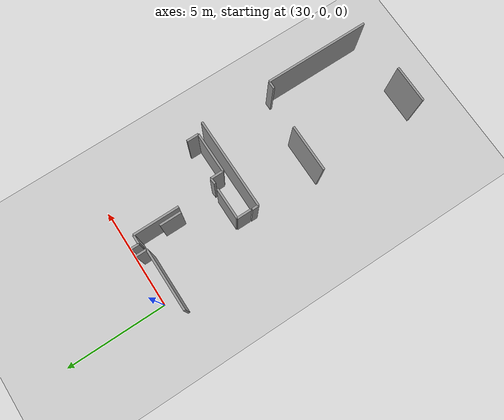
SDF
<sdf version="1.6">
 <world name="default">
  <model name="ground_plane">
   <static>1</static>
   <link name="link">
    <collision name="collision">
     <geometry><plane><normal>0 0 1</normal><size>100 100</size></plane></geometry>
     <surface><friction><ode><mu>100</mu><mu2>50</mu2></ode></friction></surface>
    </collision>
    <visual name="visual">
     <cast_shadows>0</cast_shadows>
     <geometry><plane><normal>0 0 1</normal><size>100 100</size></plane></geometry>
     <material>
      <script><uri>file://media/materials/scripts/gazebo.material</uri><name>Gazebo/Grey</name></script>
     </material>
    </visual>
   </link>
  </model>
  <model name="0510032262_A_40_1_104">
   <static>1</static>
   <link name="Wall_146">
    <collision name="Wall_146_Collision">
     <geometry><box><size>1.05213059619 0.1 2.5</size></box></geometry>
     <pose>0.526065298093 0 1.25 0 0 0</pose>
    </collision>
    <visual name="Wall_146_Visual">
     <pose>0.526065298093 0 1.25 0 0 0</pose>
     <geometry><box><size>1.05213059619 0.1 2.5</size></box></geometry>
     <material>
      <script><uri>file://media/materials/scripts/gazebo.material</uri><name>Gazebo/Grey</name></script>
      <ambient>1 1 1 1</ambient>
     </material>
    </visual>
    <pose>80.2247675857 -16.1580099629 0 0 0 -1.57079632679</pose>
   </link>
   <link name="Wall_147">
    <collision name="Wall_147_Collision">
     <geometry><box><size>1.52933337564 0.1 2.5</size></box></geometry>
     <pose>0.764666687819 0 1.25 0 0 0</pose>
    </collision>
    <visual name="Wall_147_Visual">
     <pose>0.764666687819 0 1.25 0 0 0</pose>
     <geometry><box><size>1.52933337564 0.1 2.5</size></box></geometry>
     <material>
      <script><uri>file://media/materials/scripts/gazebo.material</uri><name>Gazebo/Grey</name></script>
      <ambient>1 1 1 1</ambient>
     </material>
    </visual>
    <pose>80.2247675857 -19.0532093791 0 0 0 3.14159265359</pose>
   </link>
   <link name="Wall_148">
    <collision name="Wall_148_Collision">
     <geometry><box><size>0.690928705143 0.1 2.5</size></box></geometry>
     <pose>0.345464352572 0 1.25 0 0 0</pose>
    </collision>
    <visual name="Wall_148_Visual">
     <pose>0.345464352572 0 1.25 0 0 0</pose>
     <geometry><box><size>0.690928705143 0.1 2.5</size></box></geometry>
     <material>
      <script><uri>file://media/materials/scripts/gazebo.material</uri><name>Gazebo/Grey</name></script>
      <ambient>1 1 1 1</ambient>
     </material>
    </visual>
    <pose>78.6954342101 -19.0532093791 0 0 0 -1.57079632679</pose>
   </link>
   <link name="Wall_233">
    <collision name="Wall_233_Collision">
     <geometry><box><size>2.32204841831 0.1 2.5</size></box></geometry>
     <pose>1.16102420916 0 1.25 0 0 0</pose>
    </collision>
    <visual name="Wall_233_Visual">
     <pose>1.16102420916 0 1.25 0 0 0</pose>
     <geometry><box><size>2.32204841831 0.1 2.5</size></box></geometry>
     <material>
      <script><uri>file://media/materials/scripts/gazebo.material</uri><name>Gazebo/Grey</name></script>
      <ambient>1 1 1 1</ambient>
     </material>
    </visual>
    <pose>80.7689818193 -23.3528571882 0 0 0 3.14159265359</pose>
   </link>
   <link name="Wall_237">
    <collision name="Wall_237_Collision">
     <geometry><box><size>0.312466288035 0.1 2.5</size></box></geometry>
     <pose>0.156233144018 0 1.25 0 0 0</pose>
    </collision>
    <visual name="Wall_237_Visual">
     <pose>0.156233144018 0 1.25 0 0 0</pose>
     <geometry><box><size>0.312466288035 0.1 2.5</size></box></geometry>
     <material>
      <script><uri>file://media/materials/scripts/gazebo.material</uri><name>Gazebo/Grey</name></script>
      <ambient>1 1 1 1</ambient>
     </material>
    </visual>
    <pose>78.6738585525 -19.798838722 0 0 0 -1.57079632679</pose>
   </link>
   <link name="Wall_238">
    <collision name="Wall_238_Collision">
     <geometry><box><size>4.46654186629 0.1 2.5</size></box></geometry>
     <pose>2.23327093315 0 1.25 0 0 0</pose>
    </collision>
    <visual name="Wall_238_Visual">
     <pose>2.23327093315 0 1.25 0 0 0</pose>
     <geometry><box><size>4.46654186629 0.1 2.5</size></box></geometry>
     <material>
      <script><uri>file://media/materials/scripts/gazebo.material</uri><name>Gazebo/Grey</name></script>
      <ambient>1 1 1 1</ambient>
     </material>
    </visual>
    <pose>78.6738585525 -20.11130501 0 0 0 0.0</pose>
   </link>
   <link name="Wall_242">
    <collision name="Wall_242_Collision">
     <geometry><box><size>1.86096392423 0.1 2.5</size></box></geometry>
     <pose>0.930481962116 0 1.25 0 0 0</pose>
    </collision>
    <visual name="Wall_242_Visual">
     <pose>0.930481962116 0 1.25 0 0 0</pose>
     <geometry><box><size>1.86096392423 0.1 2.5</size></box></geometry>
     <material>
      <script><uri>file://media/materials/scripts/gazebo.material</uri><name>Gazebo/Grey</name></script>
      <ambient>1 1 1 1</ambient>
     </material>
    </visual>
    <pose>80.5117238316 -28.8604879906 0 0 0 3.14159265359</pose>
   </link>
   <link name="Wall_247">
    <collision name="Wall_247_Collision">
     <geometry><box><size>0.383792873687 0.1 2.5</size></box></geometry>
     <pose>0.191896436844 0 1.25 0 0 0</pose>
    </collision>
    <visual name="Wall_247_Visual">
     <pose>0.191896436844 0 1.25 0 0 0</pose>
     <geometry><box><size>0.383792873687 0.1 2.5</size></box></geometry>
     <material>
      <script><uri>file://media/materials/scripts/gazebo.material</uri><name>Gazebo/Grey</name></script>
      <ambient>1 1 1 1</ambient>
     </material>
    </visual>
    <pose>82.7398546816 -23.6466668782 0 0 0 0.0</pose>
   </link>
   <link name="Wall_248">
    <collision name="Wall_248_Collision">
     <geometry><box><size>5.21382846673 0.1 2.5</size></box></geometry>
     <pose>2.60691423336 0 1.25 0 0 0</pose>
    </collision>
    <visual name="Wall_248_Visual">
     <pose>2.60691423336 0 1.25 0 0 0</pose>
     <geometry><box><size>5.21382846673 0.1 2.5</size></box></geometry>
     <material>
      <script><uri>file://media/materials/scripts/gazebo.material</uri><name>Gazebo/Grey</name></script>
      <ambient>1 1 1 1</ambient>
     </material>
    </visual>
    <pose>83.1236475553 -23.6466668782 0 0 0 -1.5691167198</pose>
   </link>
   <link name="Wall_249">
    <collision name="Wall_249_Collision">
     <geometry><box><size>2.22927309071 0.1 2.5</size></box></geometry>
     <pose>1.11463654536 0 1.25 0 0 0</pose>
    </collision>
    <visual name="Wall_249_Visual">
     <pose>1.11463654536 0 1.25 0 0 0</pose>
     <geometry><box><size>2.22927309071 0.1 2.5</size></box></geometry>
     <material>
      <script><uri>file://media/materials/scripts/gazebo.material</uri><name>Gazebo/Grey</name></script>
      <ambient>1 1 1 1</ambient>
     </material>
    </visual>
    <pose>80.4778373576 -17.2503728147 0 0 0 1.57079632679</pose>
   </link>
   <link name="Wall_250">
    <collision name="Wall_250_Collision">
     <geometry><box><size>0.449027508963 0.1 2.5</size></box></geometry>
     <pose>0.224513754482 0 1.25 0 0 0</pose>
    </collision>
    <visual name="Wall_250_Visual">
     <pose>0.224513754482 0 1.25 0 0 0</pose>
     <geometry><box><size>0.449027508963 0.1 2.5</size></box></geometry>
     <material>
      <script><uri>file://media/materials/scripts/gazebo.material</uri><name>Gazebo/Grey</name></script>
      <ambient>1 1 1 1</ambient>
     </material>
    </visual>
    <pose>80.4778373576 -15.021099724 0 0 0 3.14159265359</pose>
   </link>
   <link name="Wall_251">
    <collision name="Wall_251_Collision">
     <geometry><box><size>0.386965764508 0.1 2.5</size></box></geometry>
     <pose>0.193482882254 0 1.25 0 0 0</pose>
    </collision>
    <visual name="Wall_251_Visual">
     <pose>0.193482882254 0 1.25 0 0 0</pose>
     <geometry><box><size>0.386965764508 0.1 2.5</size></box></geometry>
     <material>
      <script><uri>file://media/materials/scripts/gazebo.material</uri><name>Gazebo/Grey</name></script>
      <ambient>1 1 1 1</ambient>
     </material>
    </visual>
    <pose>80.0288098487 -15.021099724 0 0 0 1.57079632679</pose>
   </link>
   <link name="Wall_268">
    <collision name="Wall_268_Collision">
     <geometry><box><size>0.584192657931 0.1 2.5</size></box></geometry>
     <pose>0.292096328965 0 1.25 0 0 0</pose>
    </collision>
    <visual name="Wall_268_Visual">
     <pose>0.292096328965 0 1.25 0 0 0</pose>
     <geometry><box><size>0.584192657931 0.1 2.5</size></box></geometry>
     <material>
      <script><uri>file://media/materials/scripts/gazebo.material</uri><name>Gazebo/Grey</name></script>
      <ambient>1 1 1 1</ambient>
     </material>
    </visual>
    <pose>82.7564806295 -19.0931878034 0 0 0 -1.57079632679</pose>
   </link>
   <link name="Wall_269">
    <collision name="Wall_269_Collision">
     <geometry><box><size>1.9861027382 0.1 2.5</size></box></geometry>
     <pose>0.993051369102 0 1.25 0 0 0</pose>
    </collision>
    <visual name="Wall_269_Visual">
     <pose>0.993051369102 0 1.25 0 0 0</pose>
     <geometry><box><size>1.9861027382 0.1 2.5</size></box></geometry>
     <material>
      <script><uri>file://media/materials/scripts/gazebo.material</uri><name>Gazebo/Grey</name></script>
      <ambient>1 1 1 1</ambient>
     </material>
    </visual>
    <pose>82.7564806295 -19.6773804613 0 0 0 3.14159265359</pose>
   </link>
   <link name="Wall_270">
    <collision name="Wall_270_Collision">
     <geometry><box><size>0.617571469366 0.1 2.5</size></box></geometry>
     <pose>0.308785734683 0 1.25 0 0 0</pose>
    </collision>
    <visual name="Wall_270_Visual">
     <pose>0.308785734683 0 1.25 0 0 0</pose>
     <geometry><box><size>0.617571469366 0.1 2.5</size></box></geometry>
     <material>
      <script><uri>file://media/materials/scripts/gazebo.material</uri><name>Gazebo/Grey</name></script>
      <ambient>1 1 1 1</ambient>
     </material>
    </visual>
    <pose>80.7703778913 -19.6773804613 0 0 0 1.57079632679</pose>
   </link>
   <link name="Wall_271">
    <collision name="Wall_271_Collision">
     <geometry><box><size>0.293617855942 0.1 2.5</size></box></geometry>
     <pose>0.146808927971 0 1.25 0 0 0</pose>
    </collision>
    <visual name="Wall_271_Visual">
     <pose>0.146808927971 0 1.25 0 0 0</pose>
     <geometry><box><size>0.293617855942 0.1 2.5</size></box></geometry>
     <material>
      <script><uri>file://media/materials/scripts/gazebo.material</uri><name>Gazebo/Grey</name></script>
      <ambient>1 1 1 1</ambient>
     </material>
    </visual>
    <pose>80.7703778913 -19.059808992 0 0 0 -3.05590278769</pose>
   </link>
   <link name="Wall_334">
    <collision name="Wall_334_Collision">
     <geometry><box><size>2.9845480217 0.1 2.5</size></box></geometry>
     <pose>1.49227401085 0 1.25 0 0 0</pose>
    </collision>
    <visual name="Wall_334_Visual">
     <pose>1.49227401085 0 1.25 0 0 0</pose>
     <geometry><box><size>2.9845480217 0.1 2.5</size></box></geometry>
     <material>
      <script><uri>file://media/materials/scripts/gazebo.material</uri><name>Gazebo/Grey</name></script>
      <ambient>1 1 1 1</ambient>
     </material>
    </visual>
    <pose>79.65504331 -15.1760637116 0 0 0 3.14159265359</pose>
   </link>
   <link name="Wall_338">
    <collision name="Wall_338_Collision">
     <geometry><box><size>0.530634260875 0.1 2.5</size></box></geometry>
     <pose>0.265317130438 0 1.25 0 0 0</pose>
    </collision>
    <visual name="Wall_338_Visual">
     <pose>0.265317130438 0 1.25 0 0 0</pose>
     <geometry><box><size>0.530634260875 0.1 2.5</size></box></geometry>
     <material>
      <script><uri>file://media/materials/scripts/gazebo.material</uri><name>Gazebo/Grey</name></script>
      <ambient>1 1 1 1</ambient>
     </material>
    </visual>
    <pose>79.65504331 -14.6454294508 0 0 0 -1.57079632679</pose>
   </link>
   <pose>-47.55 14.4288907574 0 0 0 0</pose>
  </model>
 </world>
</sdf>
